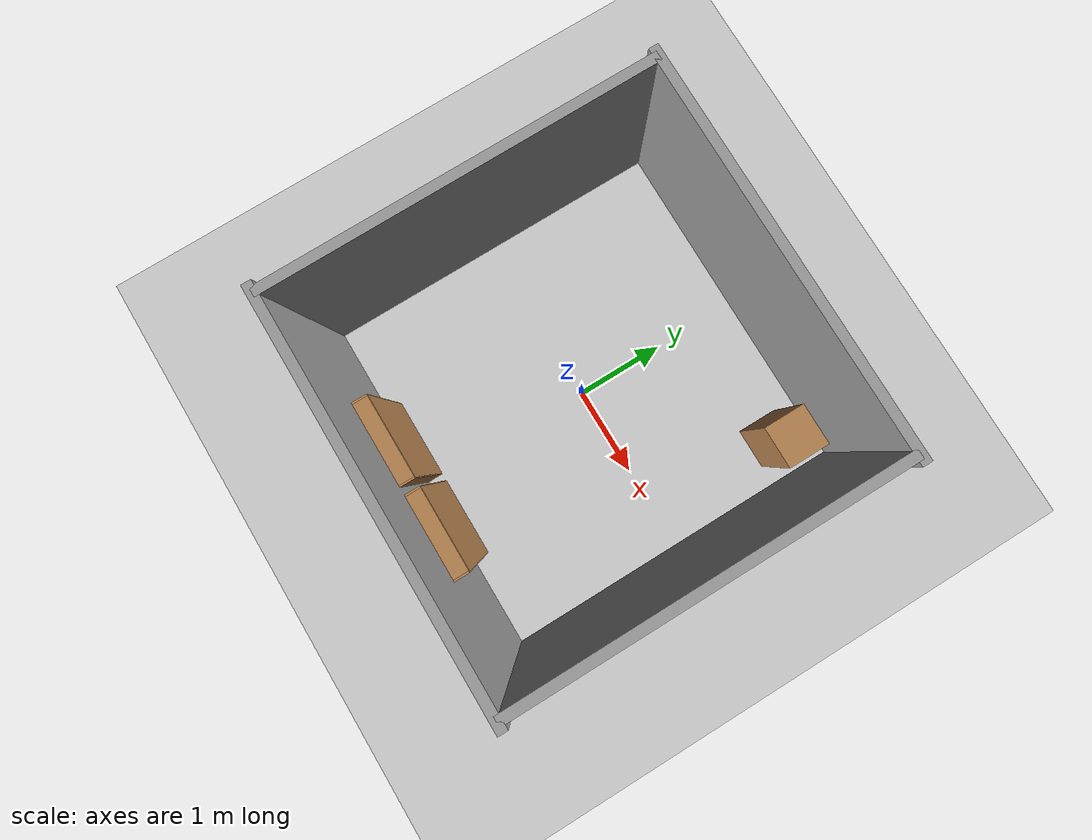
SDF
<sdf version='1.7'>
  <world name='default'>
    <light name='sun' type='directional'>
      <cast_shadows>1</cast_shadows>
      <pose>0 0 10 0 0 0</pose>
      <diffuse>0.8 0.8 0.8 1</diffuse>
      <specular>0.2 0.2 0.2 1</specular>
      <attenuation>
        <range>1000</range>
        <constant>0.9</constant>
        <linear>0.01</linear>
        <quadratic>0.001</quadratic>
      </attenuation>
      <direction>-0.5 0.1 -0.9</direction>
    </light>

    <model name='ground_plane'>
      <static>1</static>
      <link name='link'>
        <collision name='collision'>
          <geometry><plane><normal>0 0 1</normal><size>4.0 4.0</size></plane></geometry>
          <surface><contact><collide_bitmask>65535</collide_bitmask><ode/></contact><friction><ode><mu>100</mu><mu2>50</mu2></ode></friction></surface>
        </collision>
        <visual name='visual'>
          <cast_shadows>0</cast_shadows>
          <geometry><plane><normal>0 0 1</normal><size>4.0 4.0</size></plane></geometry>
          <material><script><uri>file://media/materials/scripts/gazebo.material</uri><name>Gazebo/Grey</name></script></material>
        </visual>
      </link>
    </model>

        <model name='wall_north'>
      <static>1</static>
      <link name='link'>
        <collision name='c'>
          <pose>0 2.0 1.0 0 0 0</pose>
          <geometry><box><size>4.2 0.1 2.0</size></box></geometry>
          <surface><contact><ode/></contact><bounce/><friction><torsional><ode/></torsional><ode/></friction></surface>
        </collision>
        <visual name='v'>
          <pose>0 2.0 1.0 0 0 0</pose>
          <geometry><box><size>4.2 0.1 2.0</size></box></geometry>
          <material><script><uri>file://media/materials/scripts/gazebo.material</uri><name>Gazebo/Grey</name></script></material>
        </visual>
      </link>
    </model>
        <model name='wall_south'>
      <static>1</static>
      <link name='link'>
        <collision name='c'>
          <pose>0 -2.0 1.0 0 0 0</pose>
          <geometry><box><size>4.2 0.1 2.0</size></box></geometry>
          <surface><contact><ode/></contact><bounce/><friction><torsional><ode/></torsional><ode/></friction></surface>
        </collision>
        <visual name='v'>
          <pose>0 -2.0 1.0 0 0 0</pose>
          <geometry><box><size>4.2 0.1 2.0</size></box></geometry>
          <material><script><uri>file://media/materials/scripts/gazebo.material</uri><name>Gazebo/Grey</name></script></material>
        </visual>
      </link>
    </model>
        <model name='wall_east'>
      <static>1</static>
      <link name='link'>
        <collision name='c'>
          <pose>2.0 0 1.0 0 0 0</pose>
          <geometry><box><size>0.1 4.0 2.0</size></box></geometry>
          <surface><contact><ode/></contact><bounce/><friction><torsional><ode/></torsional><ode/></friction></surface>
        </collision>
        <visual name='v'>
          <pose>2.0 0 1.0 0 0 0</pose>
          <geometry><box><size>0.1 4.0 2.0</size></box></geometry>
          <material><script><uri>file://media/materials/scripts/gazebo.material</uri><name>Gazebo/Grey</name></script></material>
        </visual>
      </link>
    </model>
        <model name='wall_west'>
      <static>1</static>
      <link name='link'>
        <collision name='c'>
          <pose>-2.0 0 1.0 0 0 0</pose>
          <geometry><box><size>0.1 4.0 2.0</size></box></geometry>
          <surface><contact><ode/></contact><bounce/><friction><torsional><ode/></torsional><ode/></friction></surface>
        </collision>
        <visual name='v'>
          <pose>-2.0 0 1.0 0 0 0</pose>
          <geometry><box><size>0.1 4.0 2.0</size></box></geometry>
          <material><script><uri>file://media/materials/scripts/gazebo.material</uri><name>Gazebo/Grey</name></script></material>
        </visual>
      </link>
    </model>

    <model name='bookshelf_A'>
      <static>1</static>
      <link name='link'>
        <inertial><mass>1</mass></inertial>
        <collision name='back'>
          <pose>0 0.005 0.6 0 0 0</pose>
          <geometry><box><size>0.9 0.01 1.2</size></box></geometry>
          <surface><contact><ode/></contact><bounce/><friction><torsional><ode/></torsional><ode/></friction></surface>
        </collision>
        <visual name='back'>
          <pose>0 0.005 0.6 0 0 0</pose>
          <geometry><box><size>0.9 0.01 1.2</size></box></geometry>
          <material><script><uri>file://media/materials/scripts/gazebo.material</uri><name>Gazebo/Wood</name></script></material>
        </visual>
        <collision name='left'>
          <pose>0.45 -0.195 0.6 0 0 0</pose>
          <geometry><box><size>0.02 0.4 1.2</size></box></geometry>
          <surface><contact><ode/></contact><bounce/><friction><torsional><ode/></torsional><ode/></friction></surface>
        </collision>
        <visual name='left'>
          <pose>0.45 -0.195 0.6 0 0 0</pose>
          <geometry><box><size>0.02 0.4 1.2</size></box></geometry>
          <material><script><uri>file://media/materials/scripts/gazebo.material</uri><name>Gazebo/Wood</name></script></material>
        </visual>
        <collision name='right'>
          <pose>-0.45 -0.195 0.6 0 0 0</pose>
          <geometry><box><size>0.02 0.4 1.2</size></box></geometry>
          <surface><contact><ode/></contact><bounce/><friction><torsional><ode/></torsional><ode/></friction></surface>
        </collision>
        <visual name='right'>
          <pose>-0.45 -0.195 0.6 0 0 0</pose>
          <geometry><box><size>0.02 0.4 1.2</size></box></geometry>
          <material><script><uri>file://media/materials/scripts/gazebo.material</uri><name>Gazebo/Wood</name></script></material>
        </visual>
        <collision name='bottom'>
          <pose>0 -0.195 0.03 0 0 0</pose>
          <geometry><box><size>0.88 0.4 0.06</size></box></geometry>
          <surface><contact><ode/></contact><bounce/><friction><torsional><ode/></torsional><ode/></friction></surface>
        </collision>
        <visual name='bottom'>
          <pose>0 -0.195 0.03 0 0 0</pose>
          <geometry><box><size>0.88 0.4 0.06</size></box></geometry>
          <material><script><uri>file://media/materials/scripts/gazebo.material</uri><name>Gazebo/Wood</name></script></material>
        </visual>
        <collision name='top'>
          <pose>0 -0.195 1.19 0 0 0</pose>
          <geometry><box><size>0.88 0.4 0.02</size></box></geometry>
          <surface><contact><ode/></contact><bounce/><friction><torsional><ode/></torsional><ode/></friction></surface>
        </collision>
        <visual name='top'>
          <pose>0 -0.195 1.19 0 0 0</pose>
          <geometry><box><size>0.88 0.4 0.02</size></box></geometry>
          <material><script><uri>file://media/materials/scripts/gazebo.material</uri><name>Gazebo/Wood</name></script></material>
        </visual>
        <collision name='shelf_low'>
          <pose>0 -0.195 0.43 0 0 0</pose>
          <geometry><box><size>0.88 0.4 0.02</size></box></geometry>
          <surface><contact><ode/></contact><bounce/><friction><torsional><ode/></torsional><ode/></friction></surface>
        </collision>
        <visual name='shelf_low'>
          <pose>0 -0.195 0.43 0 0 0</pose>
          <geometry><box><size>0.88 0.4 0.02</size></box></geometry>
          <material><script><uri>file://media/materials/scripts/gazebo.material</uri><name>Gazebo/Wood</name></script></material>
        </visual>
        <collision name='shelf_high'>
          <pose>0 -0.195 0.8 0 0 0</pose>
          <geometry><box><size>0.88 0.4 0.02</size></box></geometry>
          <surface><contact><ode/></contact><bounce/><friction><torsional><ode/></torsional><ode/></friction></surface>
        </collision>
        <visual name='shelf_high'>
          <pose>0 -0.195 0.8 0 0 0</pose>
          <geometry><box><size>0.88 0.4 0.02</size></box></geometry>
          <material><script><uri>file://media/materials/scripts/gazebo.material</uri><name>Gazebo/Wood</name></script></material>
        </visual>
        <self_collide>0</self_collide>
        <enable_wind>0</enable_wind>
        <kinematic>0</kinematic>
      </link>
      <pose>-0.5 -1.79 0 0 0 0</pose>
    </model>

    <model name='bookshelf_B'>
      <static>1</static>
      <link name='link'>
        <inertial><mass>1</mass></inertial>
        <collision name='back'>
          <pose>0 0.005 0.6 0 0 0</pose>
          <geometry><box><size>0.9 0.01 1.2</size></box></geometry>
          <surface><contact><ode/></contact><bounce/><friction><torsional><ode/></torsional><ode/></friction></surface>
        </collision>
        <visual name='back'>
          <pose>0 0.005 0.6 0 0 0</pose>
          <geometry><box><size>0.9 0.01 1.2</size></box></geometry>
          <material><script><uri>file://media/materials/scripts/gazebo.material</uri><name>Gazebo/Wood</name></script></material>
        </visual>
        <collision name='left'>
          <pose>0.45 -0.195 0.6 0 0 0</pose>
          <geometry><box><size>0.02 0.4 1.2</size></box></geometry>
          <surface><contact><ode/></contact><bounce/><friction><torsional><ode/></torsional><ode/></friction></surface>
        </collision>
        <visual name='left'>
          <pose>0.45 -0.195 0.6 0 0 0</pose>
          <geometry><box><size>0.02 0.4 1.2</size></box></geometry>
          <material><script><uri>file://media/materials/scripts/gazebo.material</uri><name>Gazebo/Wood</name></script></material>
        </visual>
        <collision name='right'>
          <pose>-0.45 -0.195 0.6 0 0 0</pose>
          <geometry><box><size>0.02 0.4 1.2</size></box></geometry>
          <surface><contact><ode/></contact><bounce/><friction><torsional><ode/></torsional><ode/></friction></surface>
        </collision>
        <visual name='right'>
          <pose>-0.45 -0.195 0.6 0 0 0</pose>
          <geometry><box><size>0.02 0.4 1.2</size></box></geometry>
          <material><script><uri>file://media/materials/scripts/gazebo.material</uri><name>Gazebo/Wood</name></script></material>
        </visual>
        <collision name='bottom'>
          <pose>0 -0.195 0.03 0 0 0</pose>
          <geometry><box><size>0.88 0.4 0.06</size></box></geometry>
          <surface><contact><ode/></contact><bounce/><friction><torsional><ode/></torsional><ode/></friction></surface>
        </collision>
        <visual name='bottom'>
          <pose>0 -0.195 0.03 0 0 0</pose>
          <geometry><box><size>0.88 0.4 0.06</size></box></geometry>
          <material><script><uri>file://media/materials/scripts/gazebo.material</uri><name>Gazebo/Wood</name></script></material>
        </visual>
        <collision name='top'>
          <pose>0 -0.195 1.19 0 0 0</pose>
          <geometry><box><size>0.88 0.4 0.02</size></box></geometry>
          <surface><contact><ode/></contact><bounce/><friction><torsional><ode/></torsional><ode/></friction></surface>
        </collision>
        <visual name='top'>
          <pose>0 -0.195 1.19 0 0 0</pose>
          <geometry><box><size>0.88 0.4 0.02</size></box></geometry>
          <material><script><uri>file://media/materials/scripts/gazebo.material</uri><name>Gazebo/Wood</name></script></material>
        </visual>
        <collision name='shelf_low'>
          <pose>0 -0.195 0.43 0 0 0</pose>
          <geometry><box><size>0.88 0.4 0.02</size></box></geometry>
          <surface><contact><ode/></contact><bounce/><friction><torsional><ode/></torsional><ode/></friction></surface>
        </collision>
        <visual name='shelf_low'>
          <pose>0 -0.195 0.43 0 0 0</pose>
          <geometry><box><size>0.88 0.4 0.02</size></box></geometry>
          <material><script><uri>file://media/materials/scripts/gazebo.material</uri><name>Gazebo/Wood</name></script></material>
        </visual>
        <collision name='shelf_high'>
          <pose>0 -0.195 0.8 0 0 0</pose>
          <geometry><box><size>0.88 0.4 0.02</size></box></geometry>
          <surface><contact><ode/></contact><bounce/><friction><torsional><ode/></torsional><ode/></friction></surface>
        </collision>
        <visual name='shelf_high'>
          <pose>0 -0.195 0.8 0 0 0</pose>
          <geometry><box><size>0.88 0.4 0.02</size></box></geometry>
          <material><script><uri>file://media/materials/scripts/gazebo.material</uri><name>Gazebo/Wood</name></script></material>
        </visual>
        <self_collide>0</self_collide>
        <enable_wind>0</enable_wind>
        <kinematic>0</kinematic>
      </link>
      <pose>0.5 -1.79 0 0 0 0</pose>
    </model>

    <model name='cabinet'>
      <static>1</static>
      <link name='link'>
        <collision name='body'>
          <pose>0 0 0.51 0 0 0</pose>
          <geometry><box><size>0.45 0.45 1.02</size></box></geometry>
          <surface><contact><ode/></contact><bounce/><friction><torsional><ode/></torsional><ode/></friction></surface>
        </collision>
        <visual name='body'>
          <pose>0 0 0.51 0 0 0</pose>
          <geometry><box><size>0.45 0.45 1.02</size></box></geometry>
          <material><script><uri>file://media/materials/scripts/gazebo.material</uri><name>Gazebo/Wood</name></script></material>
        </visual>
        <self_collide>0</self_collide>
        <enable_wind>0</enable_wind>
        <kinematic>0</kinematic>
      </link>
      <pose>1.5 1.5 0 0 0 0</pose>
    </model>

    <gravity>0 0 -9.8</gravity>
    <magnetic_field>6e-06 2.3e-05 -4.2e-05</magnetic_field>
    <atmosphere type='adiabatic'/>
    <physics type='ode'>
      <max_step_size>0.001</max_step_size>
      <real_time_factor>1</real_time_factor>
      <real_time_update_rate>1000</real_time_update_rate>
    </physics>
    <scene>
      <ambient>0.4 0.4 0.4 1</ambient>
      <background>0.7 0.7 0.7 1</background>
      <shadows>1</shadows>
    </scene>

    <gui fullscreen='0'>
      <camera name='user_camera'>
        <pose>0 0 12 0 1.5707 0</pose>
        <view_controller>orbit</view_controller>
        <projection_type>perspective</projection_type>
      </camera>
    </gui>
  </world>
</sdf>
